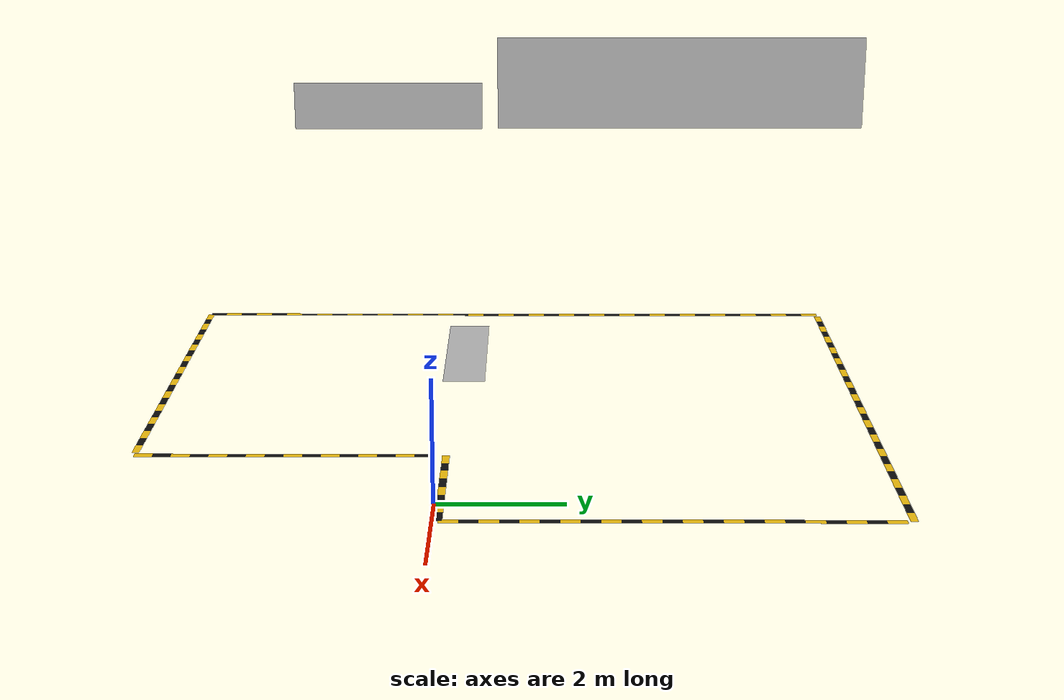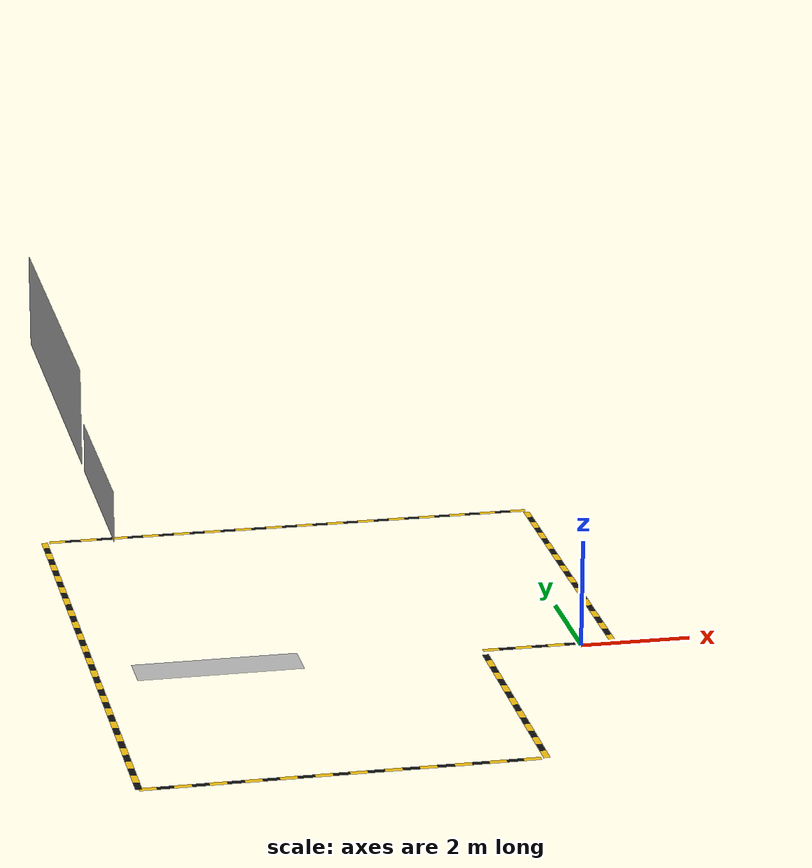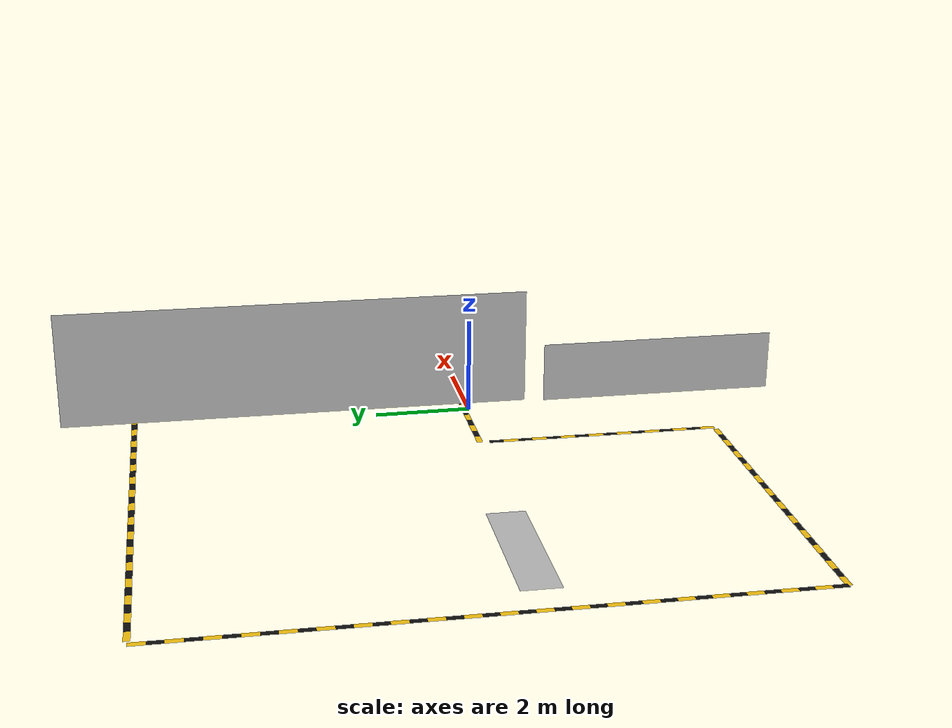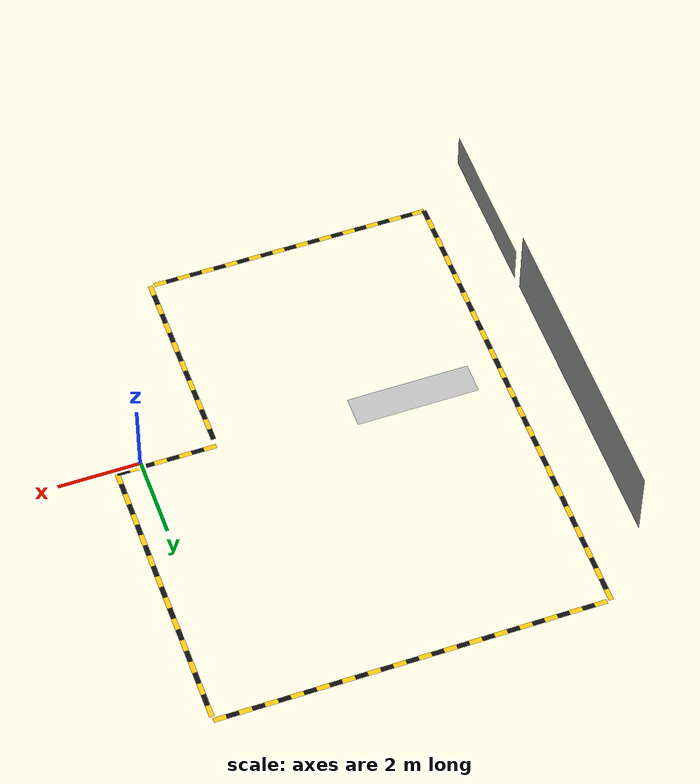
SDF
<?xml version="1.0"?>
<sdf version="1.6">
  <model name="shipping_dock_layout">
    <static>true</static>
    <link name="link">
      <visual name="visual">
        <cast_shadows>false</cast_shadows>
        <geometry><mesh><uri>model://shipping_dock_layout/meshes/mesh.dae</uri></mesh></geometry>
      </visual>
    </link>
  </model>
</sdf>
